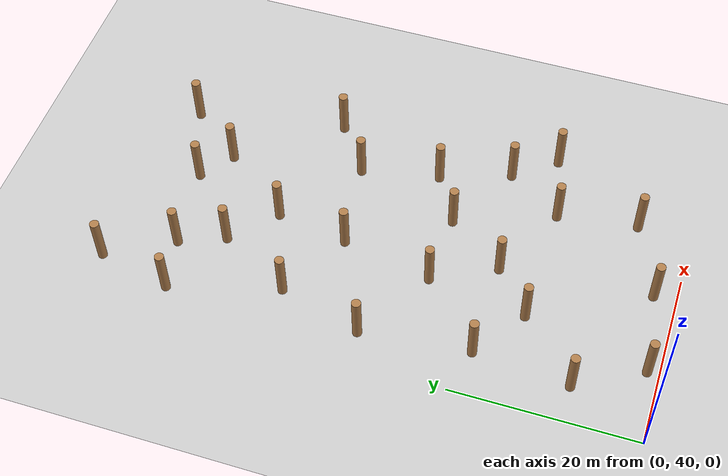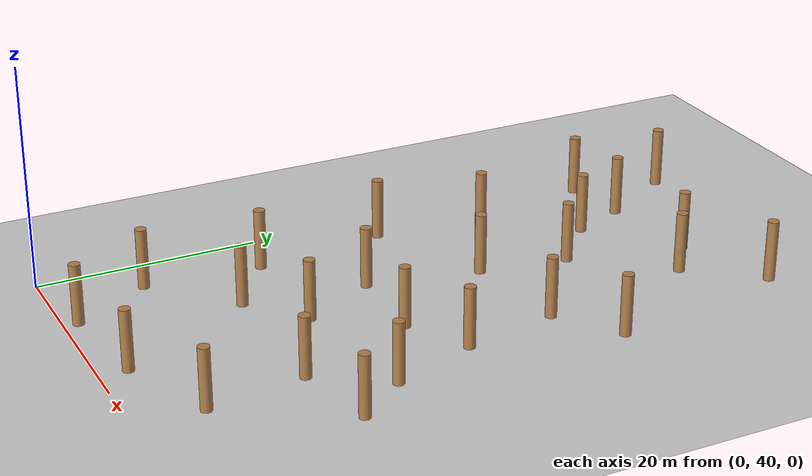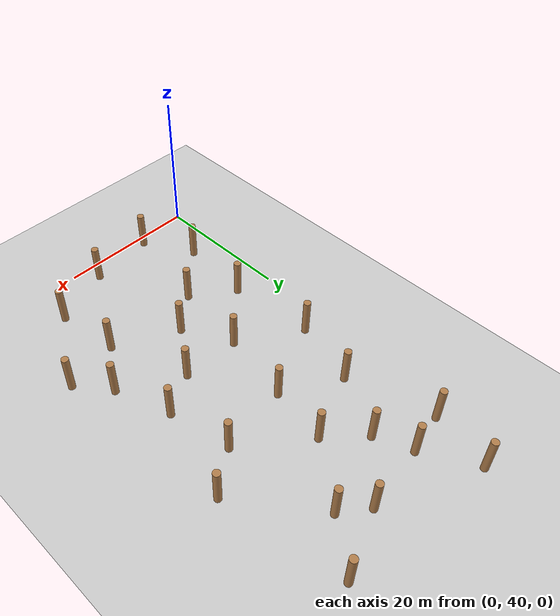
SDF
<sdf version="1.6">
 <world name="default">
  <model name="ground_plane">
   <static>1</static>
   <link name="link">
    <collision name="collision">
     <geometry><plane><normal>0 0 1</normal><size>100 100</size></plane></geometry>
     <surface><friction><ode><mu>100</mu><mu2>50</mu2></ode></friction></surface>
    </collision>
    <visual name="visual">
     <cast_shadows>0</cast_shadows>
     <geometry><plane><normal>0 0 1</normal><size>100 100</size></plane></geometry>
     <material>
      <script><uri>file://media/materials/scripts/gazebo.material</uri><name>Gazebo/Grey</name></script>
     </material>
    </visual>
   </link>
  </model>
  <model name="WoodPillars_1">
   <link name="link">
    <inertial>
     <mass>1</mass>
     <inertia><ixx>0.145833</ixx><ixy>0</ixy><ixz>0</ixz><iyy>0.145833</iyy><iyz>0</iyz><izz>0.125</izz></inertia>
    </inertial>
    <visual name="visual">
     <geometry><cylinder><radius>0.5</radius><length>5.50507</length></cylinder></geometry>
     <material>
      <script><name>Gazebo/Wood</name><uri>file://media/materials/scripts/gazebo.material</uri></script>
     </material>
    </visual>
    <collision name="collision">
     <geometry><cylinder><radius>0.5</radius><length>5.50507</length></cylinder></geometry>
     <surface>
      <friction>
       <ode><mu>1</mu><mu2>1</mu2><fdir1>0 0 0</fdir1><slip1>0</slip1><slip2>0</slip2></ode>
       <torsional>
        <coefficient>1</coefficient>
        <patch_radius>0</patch_radius>
        <surface_radius>0</surface_radius>
        <use_patch_radius>1</use_patch_radius>
        <ode><slip>0</slip></ode>
       </torsional>
      </friction>
      <bounce><restitution_coefficient>0</restitution_coefficient><threshold>1e+06</threshold></bounce>
      <contact>
       <collide_without_contact>0</collide_without_contact>
       <collide_without_contact_bitmask>1</collide_without_contact_bitmask>
       <collide_bitmask>1</collide_bitmask>
       <ode>
        <soft_cfm>0</soft_cfm>
        <soft_erp>0.2</soft_erp>
        <kp>1e+13</kp>
        <kd>1</kd>
        <max_vel>0.01</max_vel>
        <min_depth>0</min_depth>
       </ode>
       <bullet>
        <split_impulse>1</split_impulse>
        <split_impulse_penetration_threshold>-0.01</split_impulse_penetration_threshold>
        <soft_cfm>0</soft_cfm>
        <soft_erp>0.2</soft_erp>
        <kp>1e+13</kp>
        <kd>1</kd>
       </bullet>
      </contact>
     </surface>
    </collision>
   </link>
   <link name="link_clone">
    <inertial>
     <mass>1</mass>
     <inertia><ixx>0.145833</ixx><ixy>0</ixy><ixz>0</ixz><iyy>0.145833</iyy><iyz>0</iyz><izz>0.125</izz></inertia>
    </inertial>
    <pose>17.6954 -2.91348 -2e-06 0 -0 -0.001289</pose>
    <visual name="visual">
     <geometry><cylinder><radius>0.5</radius><length>5.50507</length></cylinder></geometry>
     <material>
      <script><name>Gazebo/Wood</name><uri>file://media/materials/scripts/gazebo.material</uri></script>
      <shader type="pixel"/>
     </material>
    </visual>
    <collision name="collision">
     <geometry><cylinder><radius>0.5</radius><length>5.50507</length></cylinder></geometry>
     <surface>
      <friction>
       <ode><mu>1</mu><mu2>1</mu2><fdir1>0 0 0</fdir1><slip1>0</slip1><slip2>0</slip2></ode>
       <torsional>
        <coefficient>1</coefficient>
        <patch_radius>0</patch_radius>
        <surface_radius>0</surface_radius>
        <use_patch_radius>1</use_patch_radius>
        <ode><slip>0</slip></ode>
       </torsional>
      </friction>
      <bounce><restitution_coefficient>0</restitution_coefficient><threshold>1e+06</threshold></bounce>
      <contact>
       <collide_without_contact>0</collide_without_contact>
       <collide_without_contact_bitmask>1</collide_without_contact_bitmask>
       <collide_bitmask>1</collide_bitmask>
       <ode>
        <soft_cfm>0</soft_cfm>
        <soft_erp>0.2</soft_erp>
        <kp>1e+13</kp>
        <kd>1</kd>
        <max_vel>0.01</max_vel>
        <min_depth>0</min_depth>
       </ode>
       <bullet>
        <split_impulse>1</split_impulse>
        <split_impulse_penetration_threshold>-0.01</split_impulse_penetration_threshold>
        <soft_cfm>0</soft_cfm>
        <soft_erp>0.2</soft_erp>
        <kp>1e+13</kp>
        <kd>1</kd>
       </bullet>
      </contact>
     </surface>
    </collision>
   </link>
   <link name="link_clone_10">
    <inertial>
     <mass>1</mass>
     <inertia><ixx>0.145833</ixx><ixy>0</ixy><ixz>0</ixz><iyy>0.145833</iyy><iyz>0</iyz><izz>0.125</izz></inertia>
    </inertial>
    <pose>2.50237 12.8939 0 0 -0 -0.001289</pose>
    <visual name="visual">
     <geometry><cylinder><radius>0.5</radius><length>5.50507</length></cylinder></geometry>
     <material>
      <script><name>Gazebo/Wood</name><uri>file://media/materials/scripts/gazebo.material</uri></script>
      <shader type="pixel"/>
     </material>
    </visual>
    <collision name="collision">
     <geometry><cylinder><radius>0.5</radius><length>5.50507</length></cylinder></geometry>
     <surface>
      <friction>
       <ode><mu>1</mu><mu2>1</mu2><fdir1>0 0 0</fdir1><slip1>0</slip1><slip2>0</slip2></ode>
       <torsional>
        <coefficient>1</coefficient>
        <patch_radius>0</patch_radius>
        <surface_radius>0</surface_radius>
        <use_patch_radius>1</use_patch_radius>
        <ode><slip>0</slip></ode>
       </torsional>
      </friction>
      <bounce><restitution_coefficient>0</restitution_coefficient><threshold>1e+06</threshold></bounce>
      <contact>
       <collide_without_contact>0</collide_without_contact>
       <collide_without_contact_bitmask>1</collide_without_contact_bitmask>
       <collide_bitmask>1</collide_bitmask>
       <ode>
        <soft_cfm>0</soft_cfm>
        <soft_erp>0.2</soft_erp>
        <kp>1e+13</kp>
        <kd>1</kd>
        <max_vel>0.01</max_vel>
        <min_depth>0</min_depth>
       </ode>
       <bullet>
        <split_impulse>1</split_impulse>
        <split_impulse_penetration_threshold>-0.01</split_impulse_penetration_threshold>
        <soft_cfm>0</soft_cfm>
        <soft_erp>0.2</soft_erp>
        <kp>1e+13</kp>
        <kd>1</kd>
       </bullet>
      </contact>
     </surface>
    </collision>
   </link>
   <link name="link_clone_11">
    <inertial>
     <mass>1</mass>
     <inertia><ixx>0.145833</ixx><ixy>0</ixy><ixz>0</ixz><iyy>0.145833</iyy><iyz>0</iyz><izz>0.125</izz></inertia>
    </inertial>
    <pose>20.1245 17.4079 -2e-06 0 -0 -0.001289</pose>
    <visual name="visual">
     <geometry><cylinder><radius>0.5</radius><length>5.50507</length></cylinder></geometry>
     <material>
      <script><name>Gazebo/Wood</name><uri>file://media/materials/scripts/gazebo.material</uri></script>
      <shader type="pixel"/>
     </material>
    </visual>
    <collision name="collision">
     <geometry><cylinder><radius>0.5</radius><length>5.50507</length></cylinder></geometry>
     <surface>
      <friction>
       <ode><mu>1</mu><mu2>1</mu2><fdir1>0 0 0</fdir1><slip1>0</slip1><slip2>0</slip2></ode>
       <torsional>
        <coefficient>1</coefficient>
        <patch_radius>0</patch_radius>
        <surface_radius>0</surface_radius>
        <use_patch_radius>1</use_patch_radius>
        <ode><slip>0</slip></ode>
       </torsional>
      </friction>
      <bounce><restitution_coefficient>0</restitution_coefficient><threshold>1e+06</threshold></bounce>
      <contact>
       <collide_without_contact>0</collide_without_contact>
       <collide_without_contact_bitmask>1</collide_without_contact_bitmask>
       <collide_bitmask>1</collide_bitmask>
       <ode>
        <soft_cfm>0</soft_cfm>
        <soft_erp>0.2</soft_erp>
        <kp>1e+13</kp>
        <kd>1</kd>
        <max_vel>0.01</max_vel>
        <min_depth>0</min_depth>
       </ode>
       <bullet>
        <split_impulse>1</split_impulse>
        <split_impulse_penetration_threshold>-0.01</split_impulse_penetration_threshold>
        <soft_cfm>0</soft_cfm>
        <soft_erp>0.2</soft_erp>
        <kp>1e+13</kp>
        <kd>1</kd>
       </bullet>
      </contact>
     </surface>
    </collision>
   </link>
   <link name="link_clone_14">
    <inertial>
     <mass>1</mass>
     <inertia><ixx>0.145833</ixx><ixy>0</ixy><ixz>0</ixz><iyy>0.145833</iyy><iyz>0</iyz><izz>0.125</izz></inertia>
    </inertial>
    <pose>9.31461 -20.9997 -1e-06 0 -0 -0.001289</pose>
    <visual name="visual">
     <geometry><cylinder><radius>0.5</radius><length>5.50507</length></cylinder></geometry>
     <material>
      <script><name>Gazebo/Wood</name><uri>file://media/materials/scripts/gazebo.material</uri></script>
      <shader type="pixel"/>
     </material>
    </visual>
    <collision name="collision">
     <geometry><cylinder><radius>0.5</radius><length>5.50507</length></cylinder></geometry>
     <surface>
      <friction>
       <ode><mu>1</mu><mu2>1</mu2><fdir1>0 0 0</fdir1><slip1>0</slip1><slip2>0</slip2></ode>
       <torsional>
        <coefficient>1</coefficient>
        <patch_radius>0</patch_radius>
        <surface_radius>0</surface_radius>
        <use_patch_radius>1</use_patch_radius>
        <ode><slip>0</slip></ode>
       </torsional>
      </friction>
      <bounce><restitution_coefficient>0</restitution_coefficient><threshold>1e+06</threshold></bounce>
      <contact>
       <collide_without_contact>0</collide_without_contact>
       <collide_without_contact_bitmask>1</collide_without_contact_bitmask>
       <collide_bitmask>1</collide_bitmask>
       <ode>
        <soft_cfm>0</soft_cfm>
        <soft_erp>0.2</soft_erp>
        <kp>1e+13</kp>
        <kd>1</kd>
        <max_vel>0.01</max_vel>
        <min_depth>0</min_depth>
       </ode>
       <bullet>
        <split_impulse>1</split_impulse>
        <split_impulse_penetration_threshold>-0.01</split_impulse_penetration_threshold>
        <soft_cfm>0</soft_cfm>
        <soft_erp>0.2</soft_erp>
        <kp>1e+13</kp>
        <kd>1</kd>
       </bullet>
      </contact>
     </surface>
    </collision>
   </link>
   <link name="link_clone_15">
    <inertial>
     <mass>1</mass>
     <inertia><ixx>0.145833</ixx><ixy>0</ixy><ixz>0</ixz><iyy>0.145833</iyy><iyz>0</iyz><izz>0.125</izz></inertia>
    </inertial>
    <pose>17.9894 -25.1945 -2e-06 0 -0 -0.001289</pose>
    <visual name="visual">
     <geometry><cylinder><radius>0.5</radius><length>5.50507</length></cylinder></geometry>
     <material>
      <script><name>Gazebo/Wood</name><uri>file://media/materials/scripts/gazebo.material</uri></script>
      <shader type="pixel"/>
     </material>
    </visual>
    <collision name="collision">
     <geometry><cylinder><radius>0.5</radius><length>5.50507</length></cylinder></geometry>
     <surface>
      <friction>
       <ode><mu>1</mu><mu2>1</mu2><fdir1>0 0 0</fdir1><slip1>0</slip1><slip2>0</slip2></ode>
       <torsional>
        <coefficient>1</coefficient>
        <patch_radius>0</patch_radius>
        <surface_radius>0</surface_radius>
        <use_patch_radius>1</use_patch_radius>
        <ode><slip>0</slip></ode>
       </torsional>
      </friction>
      <bounce><restitution_coefficient>0</restitution_coefficient><threshold>1e+06</threshold></bounce>
      <contact>
       <collide_without_contact>0</collide_without_contact>
       <collide_without_contact_bitmask>1</collide_without_contact_bitmask>
       <collide_bitmask>1</collide_bitmask>
       <ode>
        <soft_cfm>0</soft_cfm>
        <soft_erp>0.2</soft_erp>
        <kp>1e+13</kp>
        <kd>1</kd>
        <max_vel>0.01</max_vel>
        <min_depth>0</min_depth>
       </ode>
       <bullet>
        <split_impulse>1</split_impulse>
        <split_impulse_penetration_threshold>-0.01</split_impulse_penetration_threshold>
        <soft_cfm>0</soft_cfm>
        <soft_erp>0.2</soft_erp>
        <kp>1e+13</kp>
        <kd>1</kd>
       </bullet>
      </contact>
     </surface>
    </collision>
   </link>
   <link name="link_clone_17">
    <inertial>
     <mass>1</mass>
     <inertia><ixx>0.145833</ixx><ixy>0</ixy><ixz>0</ixz><iyy>0.145833</iyy><iyz>0</iyz><izz>0.125</izz></inertia>
    </inertial>
    <pose>19.3784 -11.4604 -2e-06 0 -0 -0.001289</pose>
    <visual name="visual">
     <geometry><cylinder><radius>0.5</radius><length>5.50507</length></cylinder></geometry>
     <material>
      <script><name>Gazebo/Wood</name><uri>file://media/materials/scripts/gazebo.material</uri></script>
      <shader type="pixel"/>
     </material>
    </visual>
    <collision name="collision">
     <geometry><cylinder><radius>0.5</radius><length>5.50507</length></cylinder></geometry>
     <surface>
      <friction>
       <ode><mu>1</mu><mu2>1</mu2><fdir1>0 0 0</fdir1><slip1>0</slip1><slip2>0</slip2></ode>
       <torsional>
        <coefficient>1</coefficient>
        <patch_radius>0</patch_radius>
        <surface_radius>0</surface_radius>
        <use_patch_radius>1</use_patch_radius>
        <ode><slip>0</slip></ode>
       </torsional>
      </friction>
      <bounce><restitution_coefficient>0</restitution_coefficient><threshold>1e+06</threshold></bounce>
      <contact>
       <collide_without_contact>0</collide_without_contact>
       <collide_without_contact_bitmask>1</collide_without_contact_bitmask>
       <collide_bitmask>1</collide_bitmask>
       <ode>
        <soft_cfm>0</soft_cfm>
        <soft_erp>0.2</soft_erp>
        <kp>1e+13</kp>
        <kd>1</kd>
        <max_vel>0.01</max_vel>
        <min_depth>0</min_depth>
       </ode>
       <bullet>
        <split_impulse>1</split_impulse>
        <split_impulse_penetration_threshold>-0.01</split_impulse_penetration_threshold>
        <soft_cfm>0</soft_cfm>
        <soft_erp>0.2</soft_erp>
        <kp>1e+13</kp>
        <kd>1</kd>
       </bullet>
      </contact>
     </surface>
    </collision>
   </link>
   <link name="link_clone_18">
    <inertial>
     <mass>1</mass>
     <inertia><ixx>0.145833</ixx><ixy>0</ixy><ixz>0</ixz><iyy>0.145833</iyy><iyz>0</iyz><izz>0.125</izz></inertia>
    </inertial>
    <pose>9.1573 3.67739 -1e-06 0 -0 -0.001289</pose>
    <visual name="visual">
     <geometry><cylinder><radius>0.5</radius><length>5.50507</length></cylinder></geometry>
     <material>
      <script><name>Gazebo/Wood</name><uri>file://media/materials/scripts/gazebo.material</uri></script>
      <shader type="pixel"/>
     </material>
    </visual>
    <collision name="collision">
     <geometry><cylinder><radius>0.5</radius><length>5.50507</length></cylinder></geometry>
     <surface>
      <friction>
       <ode><mu>1</mu><mu2>1</mu2><fdir1>0 0 0</fdir1><slip1>0</slip1><slip2>0</slip2></ode>
       <torsional>
        <coefficient>1</coefficient>
        <patch_radius>0</patch_radius>
        <surface_radius>0</surface_radius>
        <use_patch_radius>1</use_patch_radius>
        <ode><slip>0</slip></ode>
       </torsional>
      </friction>
      <bounce><restitution_coefficient>0</restitution_coefficient><threshold>1e+06</threshold></bounce>
      <contact>
       <collide_without_contact>0</collide_without_contact>
       <collide_without_contact_bitmask>1</collide_without_contact_bitmask>
       <collide_bitmask>1</collide_bitmask>
       <ode>
        <soft_cfm>0</soft_cfm>
        <soft_erp>0.2</soft_erp>
        <kp>1e+13</kp>
        <kd>1</kd>
        <max_vel>0.01</max_vel>
        <min_depth>0</min_depth>
       </ode>
       <bullet>
        <split_impulse>1</split_impulse>
        <split_impulse_penetration_threshold>-0.01</split_impulse_penetration_threshold>
        <soft_cfm>0</soft_cfm>
        <soft_erp>0.2</soft_erp>
        <kp>1e+13</kp>
        <kd>1</kd>
       </bullet>
      </contact>
     </surface>
    </collision>
   </link>
   <link name="link_clone_19">
    <inertial>
     <mass>1</mass>
     <inertia><ixx>0.145833</ixx><ixy>0</ixy><ixz>0</ixz><iyy>0.145833</iyy><iyz>0</iyz><izz>0.125</izz></inertia>
    </inertial>
    <pose>-3.28611 11.8265 -0 0 -0 -0.001289</pose>
    <visual name="visual">
     <geometry><cylinder><radius>0.5</radius><length>5.50507</length></cylinder></geometry>
     <material>
      <script><name>Gazebo/Wood</name><uri>file://media/materials/scripts/gazebo.material</uri></script>
      <shader type="pixel"/>
     </material>
    </visual>
    <collision name="collision">
     <geometry><cylinder><radius>0.5</radius><length>5.50507</length></cylinder></geometry>
     <surface>
      <friction>
       <ode><mu>1</mu><mu2>1</mu2><fdir1>0 0 0</fdir1><slip1>0</slip1><slip2>0</slip2></ode>
       <torsional>
        <coefficient>1</coefficient>
        <patch_radius>0</patch_radius>
        <surface_radius>0</surface_radius>
        <use_patch_radius>1</use_patch_radius>
        <ode><slip>0</slip></ode>
       </torsional>
      </friction>
      <bounce><restitution_coefficient>0</restitution_coefficient><threshold>1e+06</threshold></bounce>
      <contact>
       <collide_without_contact>0</collide_without_contact>
       <collide_without_contact_bitmask>1</collide_without_contact_bitmask>
       <collide_bitmask>1</collide_bitmask>
       <ode>
        <soft_cfm>0</soft_cfm>
        <soft_erp>0.2</soft_erp>
        <kp>1e+13</kp>
        <kd>1</kd>
        <max_vel>0.01</max_vel>
        <min_depth>0</min_depth>
       </ode>
       <bullet>
        <split_impulse>1</split_impulse>
        <split_impulse_penetration_threshold>-0.01</split_impulse_penetration_threshold>
        <soft_cfm>0</soft_cfm>
        <soft_erp>0.2</soft_erp>
        <kp>1e+13</kp>
        <kd>1</kd>
       </bullet>
      </contact>
     </surface>
    </collision>
   </link>
   <link name="link_clone_20">
    <inertial>
     <mass>1</mass>
     <inertia><ixx>0.145833</ixx><ixy>0</ixy><ixz>0</ixz><iyy>0.145833</iyy><iyz>0</iyz><izz>0.125</izz></inertia>
    </inertial>
    <pose>-2.64423 -9.12396 -0 0 -0 -0.001289</pose>
    <visual name="visual">
     <geometry><cylinder><radius>0.5</radius><length>5.50507</length></cylinder></geometry>
     <material>
      <script><name>Gazebo/Wood</name><uri>file://media/materials/scripts/gazebo.material</uri></script>
      <shader type="pixel"/>
     </material>
    </visual>
    <collision name="collision">
     <geometry><cylinder><radius>0.5</radius><length>5.50507</length></cylinder></geometry>
     <surface>
      <friction>
       <ode><mu>1</mu><mu2>1</mu2><fdir1>0 0 0</fdir1><slip1>0</slip1><slip2>0</slip2></ode>
       <torsional>
        <coefficient>1</coefficient>
        <patch_radius>0</patch_radius>
        <surface_radius>0</surface_radius>
        <use_patch_radius>1</use_patch_radius>
        <ode><slip>0</slip></ode>
       </torsional>
      </friction>
      <bounce><restitution_coefficient>0</restitution_coefficient><threshold>1e+06</threshold></bounce>
      <contact>
       <collide_without_contact>0</collide_without_contact>
       <collide_without_contact_bitmask>1</collide_without_contact_bitmask>
       <collide_bitmask>1</collide_bitmask>
       <ode>
        <soft_cfm>0</soft_cfm>
        <soft_erp>0.2</soft_erp>
        <kp>1e+13</kp>
        <kd>1</kd>
        <max_vel>0.01</max_vel>
        <min_depth>0</min_depth>
       </ode>
       <bullet>
        <split_impulse>1</split_impulse>
        <split_impulse_penetration_threshold>-0.01</split_impulse_penetration_threshold>
        <soft_cfm>0</soft_cfm>
        <soft_erp>0.2</soft_erp>
        <kp>1e+13</kp>
        <kd>1</kd>
       </bullet>
      </contact>
     </surface>
    </collision>
   </link>
   <link name="link_clone_21">
    <inertial>
     <mass>1</mass>
     <inertia><ixx>0.145833</ixx><ixy>0</ixy><ixz>0</ixz><iyy>0.145833</iyy><iyz>0</iyz><izz>0.125</izz></inertia>
    </inertial>
    <pose>15.2748 11.406 -1e-06 0 -0 -0.001289</pose>
    <visual name="visual">
     <geometry><cylinder><radius>0.5</radius><length>5.50507</length></cylinder></geometry>
     <material>
      <script><name>Gazebo/Wood</name><uri>file://media/materials/scripts/gazebo.material</uri></script>
      <shader type="pixel"/>
     </material>
    </visual>
    <collision name="collision">
     <geometry><cylinder><radius>0.5</radius><length>5.50507</length></cylinder></geometry>
     <surface>
      <friction>
       <ode><mu>1</mu><mu2>1</mu2><fdir1>0 0 0</fdir1><slip1>0</slip1><slip2>0</slip2></ode>
       <torsional>
        <coefficient>1</coefficient>
        <patch_radius>0</patch_radius>
        <surface_radius>0</surface_radius>
        <use_patch_radius>1</use_patch_radius>
        <ode><slip>0</slip></ode>
       </torsional>
      </friction>
      <bounce><restitution_coefficient>0</restitution_coefficient><threshold>1e+06</threshold></bounce>
      <contact>
       <collide_without_contact>0</collide_without_contact>
       <collide_without_contact_bitmask>1</collide_without_contact_bitmask>
       <collide_bitmask>1</collide_bitmask>
       <ode>
        <soft_cfm>0</soft_cfm>
        <soft_erp>0.2</soft_erp>
        <kp>1e+13</kp>
        <kd>1</kd>
        <max_vel>0.01</max_vel>
        <min_depth>0</min_depth>
       </ode>
       <bullet>
        <split_impulse>1</split_impulse>
        <split_impulse_penetration_threshold>-0.01</split_impulse_penetration_threshold>
        <soft_cfm>0</soft_cfm>
        <soft_erp>0.2</soft_erp>
        <kp>1e+13</kp>
        <kd>1</kd>
       </bullet>
      </contact>
     </surface>
    </collision>
   </link>
   <link name="link_clone_24">
    <inertial>
     <mass>1</mass>
     <inertia><ixx>0.145833</ixx><ixy>0</ixy><ixz>0</ixz><iyy>0.145833</iyy><iyz>0</iyz><izz>0.125</izz></inertia>
    </inertial>
    <pose>7.84688 -4.26113 -1e-06 0 -0 -0.001289</pose>
    <visual name="visual">
     <geometry><cylinder><radius>0.5</radius><length>5.50507</length></cylinder></geometry>
     <material>
      <script><name>Gazebo/Wood</name><uri>file://media/materials/scripts/gazebo.material</uri></script>
      <shader type="pixel"/>
     </material>
    </visual>
    <collision name="collision">
     <geometry><cylinder><radius>0.5</radius><length>5.50507</length></cylinder></geometry>
     <surface>
      <friction>
       <ode><mu>1</mu><mu2>1</mu2><fdir1>0 0 0</fdir1><slip1>0</slip1><slip2>0</slip2></ode>
       <torsional>
        <coefficient>1</coefficient>
        <patch_radius>0</patch_radius>
        <surface_radius>0</surface_radius>
        <use_patch_radius>1</use_patch_radius>
        <ode><slip>0</slip></ode>
       </torsional>
      </friction>
      <bounce><restitution_coefficient>0</restitution_coefficient><threshold>1e+06</threshold></bounce>
      <contact>
       <collide_without_contact>0</collide_without_contact>
       <collide_without_contact_bitmask>1</collide_without_contact_bitmask>
       <collide_bitmask>1</collide_bitmask>
       <ode>
        <soft_cfm>0</soft_cfm>
        <soft_erp>0.2</soft_erp>
        <kp>1e+13</kp>
        <kd>1</kd>
        <max_vel>0.01</max_vel>
        <min_depth>0</min_depth>
       </ode>
       <bullet>
        <split_impulse>1</split_impulse>
        <split_impulse_penetration_threshold>-0.01</split_impulse_penetration_threshold>
        <soft_cfm>0</soft_cfm>
        <soft_erp>0.2</soft_erp>
        <kp>1e+13</kp>
        <kd>1</kd>
       </bullet>
      </contact>
     </surface>
    </collision>
   </link>
   <link name="link_clone_25">
    <inertial>
     <mass>1</mass>
     <inertia><ixx>0.145833</ixx><ixy>0</ixy><ixz>0</ixz><iyy>0.145833</iyy><iyz>0</iyz><izz>0.125</izz></inertia>
    </inertial>
    <pose>11.7271 14.0632 -1e-06 0 -0 -0.001289</pose>
    <visual name="visual">
     <geometry><cylinder><radius>0.5</radius><length>5.50507</length></cylinder></geometry>
     <material>
      <script><name>Gazebo/Wood</name><uri>file://media/materials/scripts/gazebo.material</uri></script>
      <shader type="pixel"/>
     </material>
    </visual>
    <collision name="collision">
     <geometry><cylinder><radius>0.5</radius><length>5.50507</length></cylinder></geometry>
     <surface>
      <friction>
       <ode><mu>1</mu><mu2>1</mu2><fdir1>0 0 0</fdir1><slip1>0</slip1><slip2>0</slip2></ode>
       <torsional>
        <coefficient>1</coefficient>
        <patch_radius>0</patch_radius>
        <surface_radius>0</surface_radius>
        <use_patch_radius>1</use_patch_radius>
        <ode><slip>0</slip></ode>
       </torsional>
      </friction>
      <bounce><restitution_coefficient>0</restitution_coefficient><threshold>1e+06</threshold></bounce>
      <contact>
       <collide_without_contact>0</collide_without_contact>
       <collide_without_contact_bitmask>1</collide_without_contact_bitmask>
       <collide_bitmask>1</collide_bitmask>
       <ode>
        <soft_cfm>0</soft_cfm>
        <soft_erp>0.2</soft_erp>
        <kp>1e+13</kp>
        <kd>1</kd>
        <max_vel>0.01</max_vel>
        <min_depth>0</min_depth>
       </ode>
       <bullet>
        <split_impulse>1</split_impulse>
        <split_impulse_penetration_threshold>-0.01</split_impulse_penetration_threshold>
        <soft_cfm>0</soft_cfm>
        <soft_erp>0.2</soft_erp>
        <kp>1e+13</kp>
        <kd>1</kd>
       </bullet>
      </contact>
     </surface>
    </collision>
   </link>
   <link name="link_clone_26">
    <inertial>
     <mass>1</mass>
     <inertia><ixx>0.145833</ixx><ixy>0</ixy><ixz>0</ixz><iyy>0.145833</iyy><iyz>0</iyz><izz>0.125</izz></inertia>
    </inertial>
    <pose>13.9187 -14.5508 -1e-06 0 -0 -0.001289</pose>
    <visual name="visual">
     <geometry><cylinder><radius>0.5</radius><length>5.50507</length></cylinder></geometry>
     <material>
      <script><name>Gazebo/Wood</name><uri>file://media/materials/scripts/gazebo.material</uri></script>
      <shader type="pixel"/>
     </material>
    </visual>
    <collision name="collision">
     <geometry><cylinder><radius>0.5</radius><length>5.50507</length></cylinder></geometry>
     <surface>
      <friction>
       <ode><mu>1</mu><mu2>1</mu2><fdir1>0 0 0</fdir1><slip1>0</slip1><slip2>0</slip2></ode>
       <torsional>
        <coefficient>1</coefficient>
        <patch_radius>0</patch_radius>
        <surface_radius>0</surface_radius>
        <use_patch_radius>1</use_patch_radius>
        <ode><slip>0</slip></ode>
       </torsional>
      </friction>
      <bounce><restitution_coefficient>0</restitution_coefficient><threshold>1e+06</threshold></bounce>
      <contact>
       <collide_without_contact>0</collide_without_contact>
       <collide_without_contact_bitmask>1</collide_without_contact_bitmask>
       <collide_bitmask>1</collide_bitmask>
       <ode>
        <soft_cfm>0</soft_cfm>
        <soft_erp>0.2</soft_erp>
        <kp>1e+13</kp>
        <kd>1</kd>
        <max_vel>0.01</max_vel>
        <min_depth>0</min_depth>
       </ode>
       <bullet>
        <split_impulse>1</split_impulse>
        <split_impulse_penetration_threshold>-0.01</split_impulse_penetration_threshold>
        <soft_cfm>0</soft_cfm>
        <soft_erp>0.2</soft_erp>
        <kp>1e+13</kp>
        <kd>1</kd>
       </bullet>
      </contact>
     </surface>
    </collision>
   </link>
   <link name="link_clone_27">
    <inertial>
     <mass>1</mass>
     <inertia><ixx>0.145833</ixx><ixy>0</ixy><ixz>0</ixz><iyy>0.145833</iyy><iyz>0</iyz><izz>0.125</izz></inertia>
    </inertial>
    <pose>4.38632 -25.0605 -1e-06 0 -0 -0.001289</pose>
    <visual name="visual">
     <geometry><cylinder><radius>0.5</radius><length>5.50507</length></cylinder></geometry>
     <material>
      <script><name>Gazebo/Wood</name><uri>file://media/materials/scripts/gazebo.material</uri></script>
      <shader type="pixel"/>
     </material>
    </visual>
    <collision name="collision">
     <geometry><cylinder><radius>0.5</radius><length>5.50507</length></cylinder></geometry>
     <surface>
      <friction>
       <ode><mu>1</mu><mu2>1</mu2><fdir1>0 0 0</fdir1><slip1>0</slip1><slip2>0</slip2></ode>
       <torsional>
        <coefficient>1</coefficient>
        <patch_radius>0</patch_radius>
        <surface_radius>0</surface_radius>
        <use_patch_radius>1</use_patch_radius>
        <ode><slip>0</slip></ode>
       </torsional>
      </friction>
      <bounce><restitution_coefficient>0</restitution_coefficient><threshold>1e+06</threshold></bounce>
      <contact>
       <collide_without_contact>0</collide_without_contact>
       <collide_without_contact_bitmask>1</collide_without_contact_bitmask>
       <collide_bitmask>1</collide_bitmask>
       <ode>
        <soft_cfm>0</soft_cfm>
        <soft_erp>0.2</soft_erp>
        <kp>1e+13</kp>
        <kd>1</kd>
        <max_vel>0.01</max_vel>
        <min_depth>0</min_depth>
       </ode>
       <bullet>
        <split_impulse>1</split_impulse>
        <split_impulse_penetration_threshold>-0.01</split_impulse_penetration_threshold>
        <soft_cfm>0</soft_cfm>
        <soft_erp>0.2</soft_erp>
        <kp>1e+13</kp>
        <kd>1</kd>
       </bullet>
      </contact>
     </surface>
    </collision>
   </link>
   <link name="link_clone_30">
    <inertial>
     <mass>1</mass>
     <inertia><ixx>0.145833</ixx><ixy>0</ixy><ixz>0</ixz><iyy>0.145833</iyy><iyz>0</iyz><izz>0.125</izz></inertia>
    </inertial>
    <pose>4.46339 7.97492 0 0 -0 -0.001289</pose>
    <visual name="visual">
     <geometry><cylinder><radius>0.5</radius><length>5.50507</length></cylinder></geometry>
     <material>
      <script><name>Gazebo/Wood</name><uri>file://media/materials/scripts/gazebo.material</uri></script>
      <shader type="pixel"/>
     </material>
    </visual>
    <collision name="collision">
     <geometry><cylinder><radius>0.5</radius><length>5.50507</length></cylinder></geometry>
     <surface>
      <friction>
       <ode><mu>1</mu><mu2>1</mu2><fdir1>0 0 0</fdir1><slip1>0</slip1><slip2>0</slip2></ode>
       <torsional>
        <coefficient>1</coefficient>
        <patch_radius>0</patch_radius>
        <surface_radius>0</surface_radius>
        <use_patch_radius>1</use_patch_radius>
        <ode><slip>0</slip></ode>
       </torsional>
      </friction>
      <bounce><restitution_coefficient>0</restitution_coefficient><threshold>1e+06</threshold></bounce>
      <contact>
       <collide_without_contact>0</collide_without_contact>
       <collide_without_contact_bitmask>1</collide_without_contact_bitmask>
       <collide_bitmask>1</collide_bitmask>
       <ode>
        <soft_cfm>0</soft_cfm>
        <soft_erp>0.2</soft_erp>
        <kp>1e+13</kp>
        <kd>1</kd>
        <max_vel>0.01</max_vel>
        <min_depth>0</min_depth>
       </ode>
       <bullet>
        <split_impulse>1</split_impulse>
        <split_impulse_penetration_threshold>-0.01</split_impulse_penetration_threshold>
        <soft_cfm>0</soft_cfm>
        <soft_erp>0.2</soft_erp>
        <kp>1e+13</kp>
        <kd>1</kd>
       </bullet>
      </contact>
     </surface>
    </collision>
   </link>
   <link name="link_clone_31">
    <inertial>
     <mass>1</mass>
     <inertia><ixx>0.145833</ixx><ixy>0</ixy><ixz>0</ixz><iyy>0.145833</iyy><iyz>0</iyz><izz>0.125</izz></inertia>
    </inertial>
    <pose>-1.44135 19.9016 0 0 -0 -0.001289</pose>
    <visual name="visual">
     <geometry><cylinder><radius>0.5</radius><length>5.50507</length></cylinder></geometry>
     <material>
      <script><name>Gazebo/Wood</name><uri>file://media/materials/scripts/gazebo.material</uri></script>
      <shader type="pixel"/>
     </material>
    </visual>
    <collision name="collision">
     <geometry><cylinder><radius>0.5</radius><length>5.50507</length></cylinder></geometry>
     <surface>
      <friction>
       <ode><mu>1</mu><mu2>1</mu2><fdir1>0 0 0</fdir1><slip1>0</slip1><slip2>0</slip2></ode>
       <torsional>
        <coefficient>1</coefficient>
        <patch_radius>0</patch_radius>
        <surface_radius>0</surface_radius>
        <use_patch_radius>1</use_patch_radius>
        <ode><slip>0</slip></ode>
       </torsional>
      </friction>
      <bounce><restitution_coefficient>0</restitution_coefficient><threshold>1e+06</threshold></bounce>
      <contact>
       <collide_without_contact>0</collide_without_contact>
       <collide_without_contact_bitmask>1</collide_without_contact_bitmask>
       <collide_bitmask>1</collide_bitmask>
       <ode>
        <soft_cfm>0</soft_cfm>
        <soft_erp>0.2</soft_erp>
        <kp>1e+13</kp>
        <kd>1</kd>
        <max_vel>0.01</max_vel>
        <min_depth>0</min_depth>
       </ode>
       <bullet>
        <split_impulse>1</split_impulse>
        <split_impulse_penetration_threshold>-0.01</split_impulse_penetration_threshold>
        <soft_cfm>0</soft_cfm>
        <soft_erp>0.2</soft_erp>
        <kp>1e+13</kp>
        <kd>1</kd>
       </bullet>
      </contact>
     </surface>
    </collision>
   </link>
   <link name="link_clone_34">
    <inertial>
     <mass>1</mass>
     <inertia><ixx>0.145833</ixx><ixy>0</ixy><ixz>0</ixz><iyy>0.145833</iyy><iyz>0</iyz><izz>0.125</izz></inertia>
    </inertial>
    <pose>25.4673 -23.5908 -3e-06 0 -0 -0.001289</pose>
    <visual name="visual">
     <geometry><cylinder><radius>0.5</radius><length>5.50507</length></cylinder></geometry>
     <material>
      <script><name>Gazebo/Wood</name><uri>file://media/materials/scripts/gazebo.material</uri></script>
      <shader type="pixel"/>
     </material>
    </visual>
    <collision name="collision">
     <geometry><cylinder><radius>0.5</radius><length>5.50507</length></cylinder></geometry>
     <surface>
      <friction>
       <ode><mu>1</mu><mu2>1</mu2><fdir1>0 0 0</fdir1><slip1>0</slip1><slip2>0</slip2></ode>
       <torsional>
        <coefficient>1</coefficient>
        <patch_radius>0</patch_radius>
        <surface_radius>0</surface_radius>
        <use_patch_radius>1</use_patch_radius>
        <ode><slip>0</slip></ode>
       </torsional>
      </friction>
      <bounce><restitution_coefficient>0</restitution_coefficient><threshold>1e+06</threshold></bounce>
      <contact>
       <collide_without_contact>0</collide_without_contact>
       <collide_without_contact_bitmask>1</collide_without_contact_bitmask>
       <collide_bitmask>1</collide_bitmask>
       <ode>
        <soft_cfm>0</soft_cfm>
        <soft_erp>0.2</soft_erp>
        <kp>1e+13</kp>
        <kd>1</kd>
        <max_vel>0.01</max_vel>
        <min_depth>0</min_depth>
       </ode>
       <bullet>
        <split_impulse>1</split_impulse>
        <split_impulse_penetration_threshold>-0.01</split_impulse_penetration_threshold>
        <soft_cfm>0</soft_cfm>
        <soft_erp>0.2</soft_erp>
        <kp>1e+13</kp>
        <kd>1</kd>
       </bullet>
      </contact>
     </surface>
    </collision>
   </link>
   <link name="link_clone_4">
    <inertial>
     <mass>1</mass>
     <inertia><ixx>0.145833</ixx><ixy>0</ixy><ixz>0</ixz><iyy>0.145833</iyy><iyz>0</iyz><izz>0.125</izz></inertia>
    </inertial>
    <pose>23.1128 0.93751 -2e-06 0 -0 -0.001289</pose>
    <visual name="visual">
     <geometry><cylinder><radius>0.5</radius><length>5.50507</length></cylinder></geometry>
     <material>
      <script><name>Gazebo/Wood</name><uri>file://media/materials/scripts/gazebo.material</uri></script>
      <shader type="pixel"/>
     </material>
    </visual>
    <collision name="collision">
     <geometry><cylinder><radius>0.5</radius><length>5.50507</length></cylinder></geometry>
     <surface>
      <friction>
       <ode><mu>1</mu><mu2>1</mu2><fdir1>0 0 0</fdir1><slip1>0</slip1><slip2>0</slip2></ode>
       <torsional>
        <coefficient>1</coefficient>
        <patch_radius>0</patch_radius>
        <surface_radius>0</surface_radius>
        <use_patch_radius>1</use_patch_radius>
        <ode><slip>0</slip></ode>
       </torsional>
      </friction>
      <bounce><restitution_coefficient>0</restitution_coefficient><threshold>1e+06</threshold></bounce>
      <contact>
       <collide_without_contact>0</collide_without_contact>
       <collide_without_contact_bitmask>1</collide_without_contact_bitmask>
       <collide_bitmask>1</collide_bitmask>
       <ode>
        <soft_cfm>0</soft_cfm>
        <soft_erp>0.2</soft_erp>
        <kp>1e+13</kp>
        <kd>1</kd>
        <max_vel>0.01</max_vel>
        <min_depth>0</min_depth>
       </ode>
       <bullet>
        <split_impulse>1</split_impulse>
        <split_impulse_penetration_threshold>-0.01</split_impulse_penetration_threshold>
        <soft_cfm>0</soft_cfm>
        <soft_erp>0.2</soft_erp>
        <kp>1e+13</kp>
        <kd>1</kd>
       </bullet>
      </contact>
     </surface>
    </collision>
   </link>
   <link name="link_clone_7">
    <inertial>
     <mass>1</mass>
     <inertia><ixx>0.145833</ixx><ixy>0</ixy><ixz>0</ixz><iyy>0.145833</iyy><iyz>0</iyz><izz>0.125</izz></inertia>
    </inertial>
    <pose>22.0331 -19.0814 -2e-06 0 -0 -0.001289</pose>
    <visual name="visual">
     <geometry><cylinder><radius>0.5</radius><length>5.50507</length></cylinder></geometry>
     <material>
      <script><name>Gazebo/Wood</name><uri>file://media/materials/scripts/gazebo.material</uri></script>
      <shader type="pixel"/>
     </material>
    </visual>
    <collision name="collision">
     <geometry><cylinder><radius>0.5</radius><length>5.50507</length></cylinder></geometry>
     <surface>
      <friction>
       <ode><mu>1</mu><mu2>1</mu2><fdir1>0 0 0</fdir1><slip1>0</slip1><slip2>0</slip2></ode>
       <torsional>
        <coefficient>1</coefficient>
        <patch_radius>0</patch_radius>
        <surface_radius>0</surface_radius>
        <use_patch_radius>1</use_patch_radius>
        <ode><slip>0</slip></ode>
       </torsional>
      </friction>
      <bounce><restitution_coefficient>0</restitution_coefficient><threshold>1e+06</threshold></bounce>
      <contact>
       <collide_without_contact>0</collide_without_contact>
       <collide_without_contact_bitmask>1</collide_without_contact_bitmask>
       <collide_bitmask>1</collide_bitmask>
       <ode>
        <soft_cfm>0</soft_cfm>
        <soft_erp>0.2</soft_erp>
        <kp>1e+13</kp>
        <kd>1</kd>
        <max_vel>0.01</max_vel>
        <min_depth>0</min_depth>
       </ode>
       <bullet>
        <split_impulse>1</split_impulse>
        <split_impulse_penetration_threshold>-0.01</split_impulse_penetration_threshold>
        <soft_cfm>0</soft_cfm>
        <soft_erp>0.2</soft_erp>
        <kp>1e+13</kp>
        <kd>1</kd>
       </bullet>
      </contact>
     </surface>
    </collision>
   </link>
   <link name="link_clone_8">
    <inertial>
     <mass>1</mass>
     <inertia><ixx>0.145833</ixx><ixy>0</ixy><ixz>0</ixz><iyy>0.145833</iyy><iyz>0</iyz><izz>0.125</izz></inertia>
    </inertial>
    <pose>5.87636 -14.2578 -1e-06 0 -0 -0.001289</pose>
    <visual name="visual">
     <geometry><cylinder><radius>0.5</radius><length>5.50507</length></cylinder></geometry>
     <material>
      <script><name>Gazebo/Wood</name><uri>file://media/materials/scripts/gazebo.material</uri></script>
      <shader type="pixel"/>
     </material>
    </visual>
    <collision name="collision">
     <geometry><cylinder><radius>0.5</radius><length>5.50507</length></cylinder></geometry>
     <surface>
      <friction>
       <ode><mu>1</mu><mu2>1</mu2><fdir1>0 0 0</fdir1><slip1>0</slip1><slip2>0</slip2></ode>
       <torsional>
        <coefficient>1</coefficient>
        <patch_radius>0</patch_radius>
        <surface_radius>0</surface_radius>
        <use_patch_radius>1</use_patch_radius>
        <ode><slip>0</slip></ode>
       </torsional>
      </friction>
      <bounce><restitution_coefficient>0</restitution_coefficient><threshold>1e+06</threshold></bounce>
      <contact>
       <collide_without_contact>0</collide_without_contact>
       <collide_without_contact_bitmask>1</collide_without_contact_bitmask>
       <collide_bitmask>1</collide_bitmask>
       <ode>
        <soft_cfm>0</soft_cfm>
        <soft_erp>0.2</soft_erp>
        <kp>1e+13</kp>
        <kd>1</kd>
        <max_vel>0.01</max_vel>
        <min_depth>0</min_depth>
       </ode>
       <bullet>
        <split_impulse>1</split_impulse>
        <split_impulse_penetration_threshold>-0.01</split_impulse_penetration_threshold>
        <soft_cfm>0</soft_cfm>
        <soft_erp>0.2</soft_erp>
        <kp>1e+13</kp>
        <kd>1</kd>
       </bullet>
      </contact>
     </surface>
    </collision>
   </link>
   <link name="link_clone_9">
    <inertial>
     <mass>1</mass>
     <inertia><ixx>0.145833</ixx><ixy>0</ixy><ixz>0</ixz><iyy>0.145833</iyy><iyz>0</iyz><izz>0.125</izz></inertia>
    </inertial>
    <pose>-1.43964 -21.0028 0 0 -0 -0.001289</pose>
    <visual name="visual">
     <geometry><cylinder><radius>0.5</radius><length>5.50507</length></cylinder></geometry>
     <material>
      <script><name>Gazebo/Wood</name><uri>file://media/materials/scripts/gazebo.material</uri></script>
      <shader type="pixel"/>
     </material>
    </visual>
    <collision name="collision">
     <geometry><cylinder><radius>0.5</radius><length>5.50507</length></cylinder></geometry>
     <surface>
      <friction>
       <ode><mu>1</mu><mu2>1</mu2><fdir1>0 0 0</fdir1><slip1>0</slip1><slip2>0</slip2></ode>
       <torsional>
        <coefficient>1</coefficient>
        <patch_radius>0</patch_radius>
        <surface_radius>0</surface_radius>
        <use_patch_radius>1</use_patch_radius>
        <ode><slip>0</slip></ode>
       </torsional>
      </friction>
      <bounce><restitution_coefficient>0</restitution_coefficient><threshold>1e+06</threshold></bounce>
      <contact>
       <collide_without_contact>0</collide_without_contact>
       <collide_without_contact_bitmask>1</collide_without_contact_bitmask>
       <collide_bitmask>1</collide_bitmask>
       <ode>
        <soft_cfm>0</soft_cfm>
        <soft_erp>0.2</soft_erp>
        <kp>1e+13</kp>
        <kd>1</kd>
        <max_vel>0.01</max_vel>
        <min_depth>0</min_depth>
       </ode>
       <bullet>
        <split_impulse>1</split_impulse>
        <split_impulse_penetration_threshold>-0.01</split_impulse_penetration_threshold>
        <soft_cfm>0</soft_cfm>
        <soft_erp>0.2</soft_erp>
        <kp>1e+13</kp>
        <kd>1</kd>
       </bullet>
      </contact>
     </surface>
    </collision>
   </link>
   <static>0</static>
   <pose>6.34212 79.7178 2.75253 0 -0 0.001542</pose>
  </model>
  <model name="WoodPillars_6">
   <link name="link_clone_10">
    <inertial>
     <mass>1</mass>
     <inertia><ixx>0.145833</ixx><ixy>0</ixy><ixz>0</ixz><iyy>0.145833</iyy><iyz>0</iyz><izz>0.125</izz></inertia>
    </inertial>
    <pose>2.50237 12.8939 0 0 -0 -0.001289</pose>
    <visual name="visual">
     <geometry><cylinder><radius>0.5</radius><length>5.50507</length></cylinder></geometry>
     <material>
      <script><name>Gazebo/Wood</name><uri>file://media/materials/scripts/gazebo.material</uri></script>
      <shader type="pixel"/>
     </material>
    </visual>
    <collision name="collision">
     <geometry><cylinder><radius>0.5</radius><length>5.50507</length></cylinder></geometry>
     <surface>
      <friction>
       <ode><mu>1</mu><mu2>1</mu2><fdir1>0 0 0</fdir1><slip1>0</slip1><slip2>0</slip2></ode>
       <torsional>
        <coefficient>1</coefficient>
        <patch_radius>0</patch_radius>
        <surface_radius>0</surface_radius>
        <use_patch_radius>1</use_patch_radius>
        <ode><slip>0</slip></ode>
       </torsional>
      </friction>
      <bounce><restitution_coefficient>0</restitution_coefficient><threshold>1e+06</threshold></bounce>
      <contact>
       <collide_without_contact>0</collide_without_contact>
       <collide_without_contact_bitmask>1</collide_without_contact_bitmask>
       <collide_bitmask>1</collide_bitmask>
       <ode>
        <soft_cfm>0</soft_cfm>
        <soft_erp>0.2</soft_erp>
        <kp>1e+13</kp>
        <kd>1</kd>
        <max_vel>0.01</max_vel>
        <min_depth>0</min_depth>
       </ode>
       <bullet>
        <split_impulse>1</split_impulse>
        <split_impulse_penetration_threshold>-0.01</split_impulse_penetration_threshold>
        <soft_cfm>0</soft_cfm>
        <soft_erp>0.2</soft_erp>
        <kp>1e+13</kp>
        <kd>1</kd>
       </bullet>
      </contact>
     </surface>
    </collision>
   </link>
   <link name="link_clone_11">
    <inertial>
     <mass>1</mass>
     <inertia><ixx>0.145833</ixx><ixy>0</ixy><ixz>0</ixz><iyy>0.145833</iyy><iyz>0</iyz><izz>0.125</izz></inertia>
    </inertial>
    <pose>20.1245 17.4079 -2e-06 0 -0 -0.001289</pose>
    <visual name="visual">
     <geometry><cylinder><radius>0.5</radius><length>5.50507</length></cylinder></geometry>
     <material>
      <script><name>Gazebo/Wood</name><uri>file://media/materials/scripts/gazebo.material</uri></script>
      <shader type="pixel"/>
     </material>
    </visual>
    <collision name="collision">
     <geometry><cylinder><radius>0.5</radius><length>5.50507</length></cylinder></geometry>
     <surface>
      <friction>
       <ode><mu>1</mu><mu2>1</mu2><fdir1>0 0 0</fdir1><slip1>0</slip1><slip2>0</slip2></ode>
       <torsional>
        <coefficient>1</coefficient>
        <patch_radius>0</patch_radius>
        <surface_radius>0</surface_radius>
        <use_patch_radius>1</use_patch_radius>
        <ode><slip>0</slip></ode>
       </torsional>
      </friction>
      <bounce><restitution_coefficient>0</restitution_coefficient><threshold>1e+06</threshold></bounce>
      <contact>
       <collide_without_contact>0</collide_without_contact>
       <collide_without_contact_bitmask>1</collide_without_contact_bitmask>
       <collide_bitmask>1</collide_bitmask>
       <ode>
        <soft_cfm>0</soft_cfm>
        <soft_erp>0.2</soft_erp>
        <kp>1e+13</kp>
        <kd>1</kd>
        <max_vel>0.01</max_vel>
        <min_depth>0</min_depth>
       </ode>
       <bullet>
        <split_impulse>1</split_impulse>
        <split_impulse_penetration_threshold>-0.01</split_impulse_penetration_threshold>
        <soft_cfm>0</soft_cfm>
        <soft_erp>0.2</soft_erp>
        <kp>1e+13</kp>
        <kd>1</kd>
       </bullet>
      </contact>
     </surface>
    </collision>
   </link>
   <link name="link_clone_25">
    <inertial>
     <mass>1</mass>
     <inertia><ixx>0.145833</ixx><ixy>0</ixy><ixz>0</ixz><iyy>0.145833</iyy><iyz>0</iyz><izz>0.125</izz></inertia>
    </inertial>
    <pose>11.7271 14.0632 -1e-06 0 -0 -0.001289</pose>
    <visual name="visual">
     <geometry><cylinder><radius>0.5</radius><length>5.50507</length></cylinder></geometry>
     <material>
      <script><name>Gazebo/Wood</name><uri>file://media/materials/scripts/gazebo.material</uri></script>
      <shader type="pixel"/>
     </material>
    </visual>
    <collision name="collision">
     <geometry><cylinder><radius>0.5</radius><length>5.50507</length></cylinder></geometry>
     <surface>
      <friction>
       <ode><mu>1</mu><mu2>1</mu2><fdir1>0 0 0</fdir1><slip1>0</slip1><slip2>0</slip2></ode>
       <torsional>
        <coefficient>1</coefficient>
        <patch_radius>0</patch_radius>
        <surface_radius>0</surface_radius>
        <use_patch_radius>1</use_patch_radius>
        <ode><slip>0</slip></ode>
       </torsional>
      </friction>
      <bounce><restitution_coefficient>0</restitution_coefficient><threshold>1e+06</threshold></bounce>
      <contact>
       <collide_without_contact>0</collide_without_contact>
       <collide_without_contact_bitmask>1</collide_without_contact_bitmask>
       <collide_bitmask>1</collide_bitmask>
       <ode>
        <soft_cfm>0</soft_cfm>
        <soft_erp>0.2</soft_erp>
        <kp>1e+13</kp>
        <kd>1</kd>
        <max_vel>0.01</max_vel>
        <min_depth>0</min_depth>
       </ode>
       <bullet>
        <split_impulse>1</split_impulse>
        <split_impulse_penetration_threshold>-0.01</split_impulse_penetration_threshold>
        <soft_cfm>0</soft_cfm>
        <soft_erp>0.2</soft_erp>
        <kp>1e+13</kp>
        <kd>1</kd>
       </bullet>
      </contact>
     </surface>
    </collision>
   </link>
   <link name="link_clone_31">
    <inertial>
     <mass>1</mass>
     <inertia><ixx>0.145833</ixx><ixy>0</ixy><ixz>0</ixz><iyy>0.145833</iyy><iyz>0</iyz><izz>0.125</izz></inertia>
    </inertial>
    <pose>-1.44135 19.9016 0 0 -0 -0.001289</pose>
    <visual name="visual">
     <geometry><cylinder><radius>0.5</radius><length>5.50507</length></cylinder></geometry>
     <material>
      <script><name>Gazebo/Wood</name><uri>file://media/materials/scripts/gazebo.material</uri></script>
      <shader type="pixel"/>
     </material>
    </visual>
    <collision name="collision">
     <geometry><cylinder><radius>0.5</radius><length>5.50507</length></cylinder></geometry>
     <surface>
      <friction>
       <ode><mu>1</mu><mu2>1</mu2><fdir1>0 0 0</fdir1><slip1>0</slip1><slip2>0</slip2></ode>
       <torsional>
        <coefficient>1</coefficient>
        <patch_radius>0</patch_radius>
        <surface_radius>0</surface_radius>
        <use_patch_radius>1</use_patch_radius>
        <ode><slip>0</slip></ode>
       </torsional>
      </friction>
      <bounce><restitution_coefficient>0</restitution_coefficient><threshold>1e+06</threshold></bounce>
      <contact>
       <collide_without_contact>0</collide_without_contact>
       <collide_without_contact_bitmask>1</collide_without_contact_bitmask>
       <collide_bitmask>1</collide_bitmask>
       <ode>
        <soft_cfm>0</soft_cfm>
        <soft_erp>0.2</soft_erp>
        <kp>1e+13</kp>
        <kd>1</kd>
        <max_vel>0.01</max_vel>
        <min_depth>0</min_depth>
       </ode>
       <bullet>
        <split_impulse>1</split_impulse>
        <split_impulse_penetration_threshold>-0.01</split_impulse_penetration_threshold>
        <soft_cfm>0</soft_cfm>
        <soft_erp>0.2</soft_erp>
        <kp>1e+13</kp>
        <kd>1</kd>
       </bullet>
      </contact>
     </surface>
    </collision>
   </link>
   <static>0</static>
   <pose>5.51216 28.398 2.75253 0 -0 0.001688</pose>
  </model>
 </world>
</sdf>
